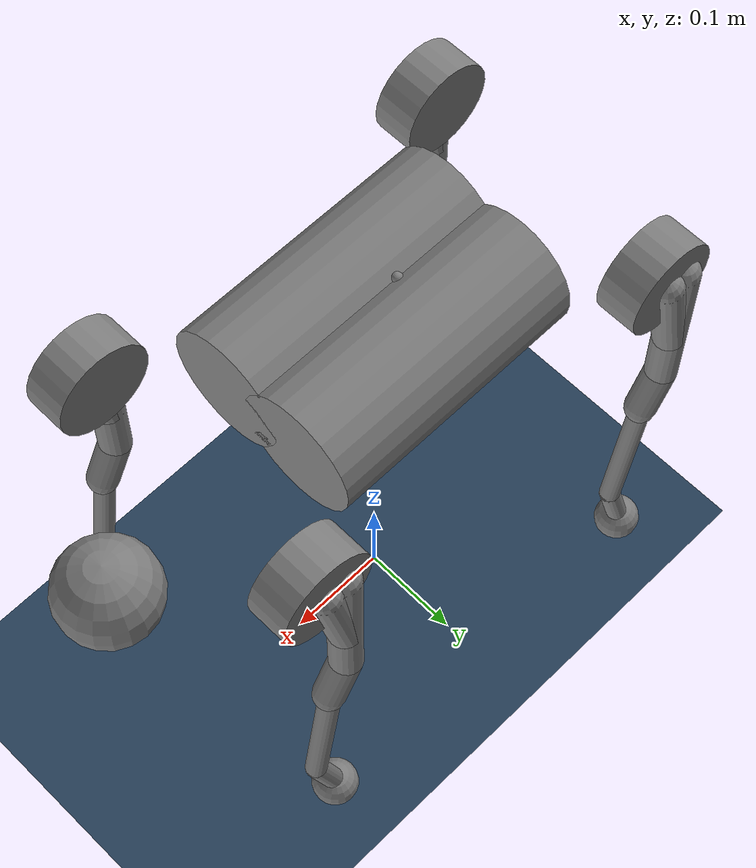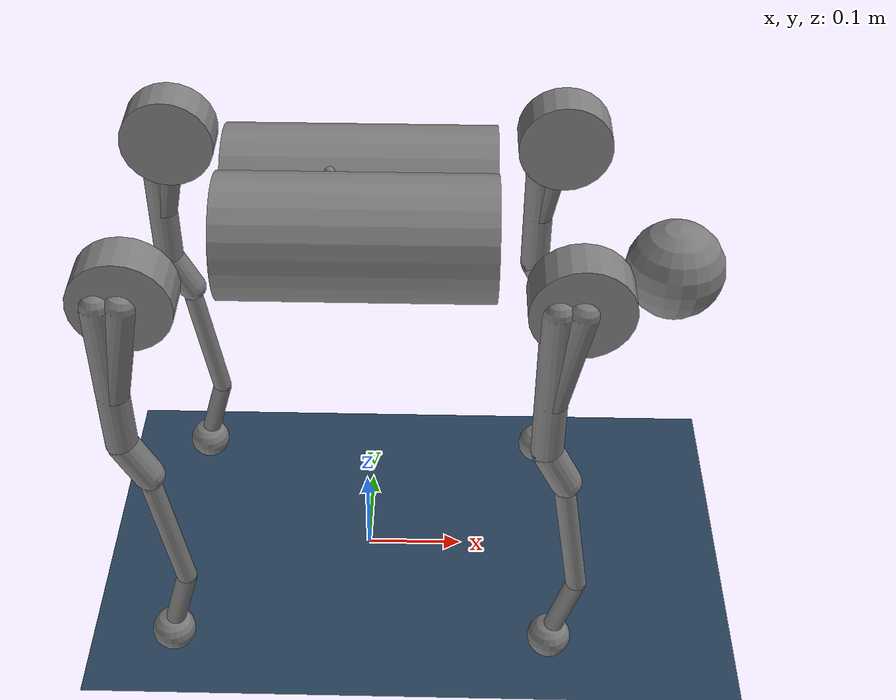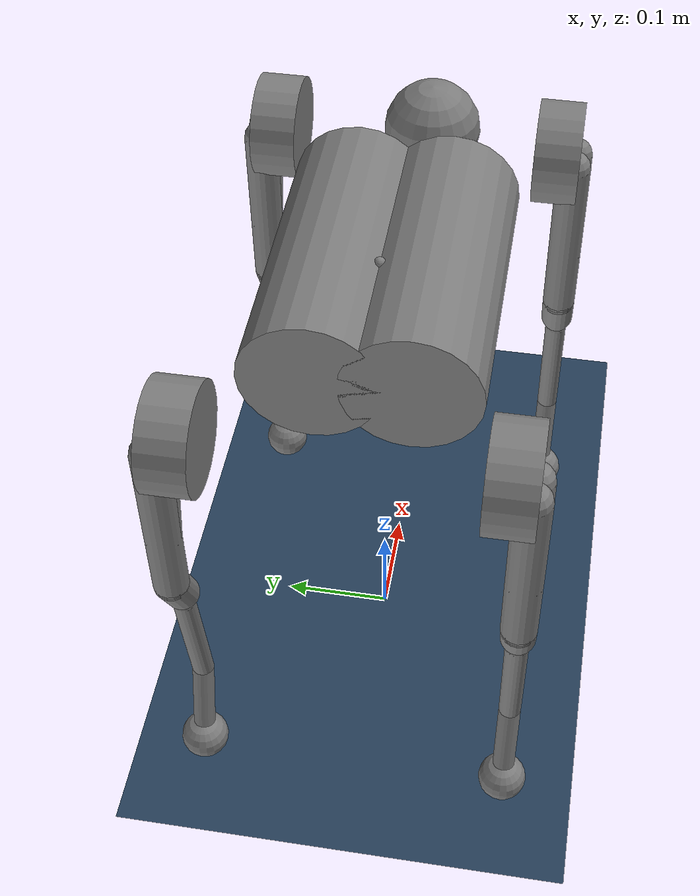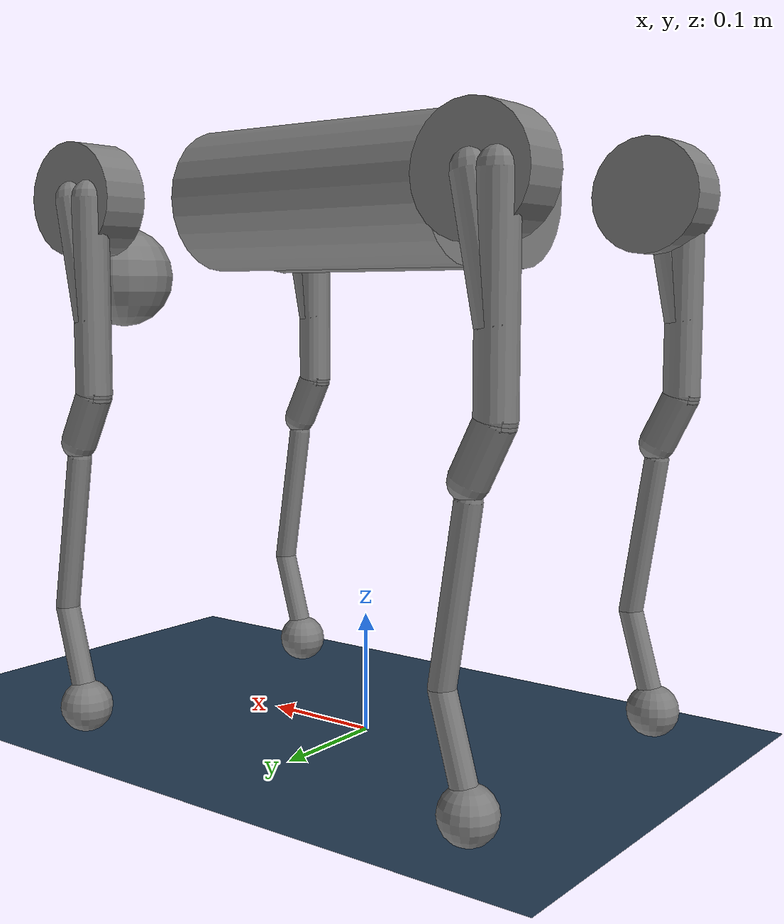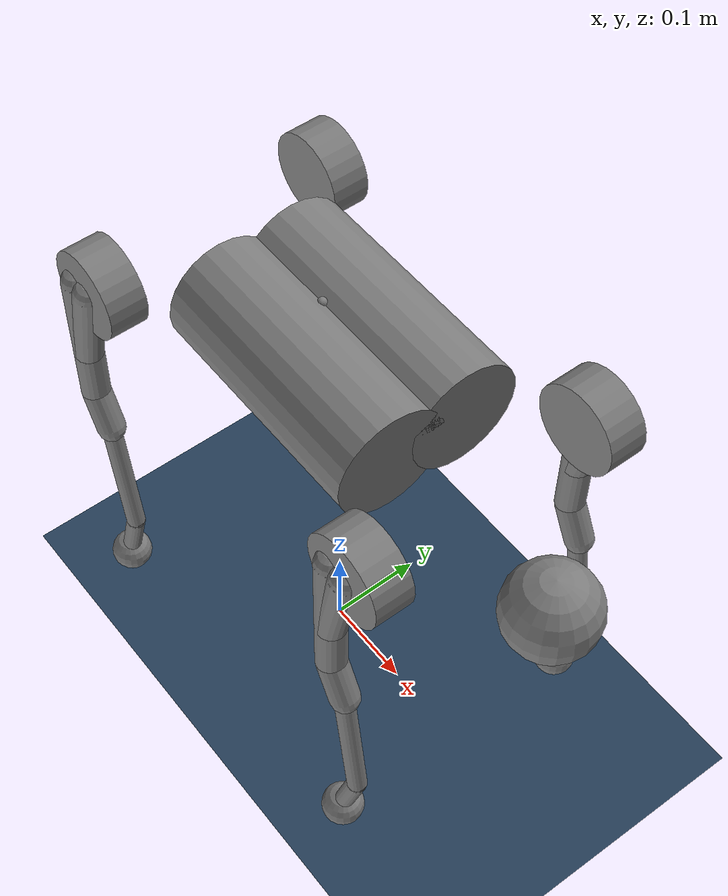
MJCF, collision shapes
<mujoco model="go2-mjx scene">
  <include file="go2_mjx_collision.xml"/>

  <statistic center="0 0 0.1" extent="0.8"/>

  <visual>
    <headlight diffuse="0.6 0.6 0.6" ambient="0.3 0.3 0.3" specular="0 0 0"/>
    <rgba haze="0.15 0.25 0.35 1"/>
    <global azimuth="120" elevation="-20"/>
  </visual>

  <asset>
    <texture type="skybox" builtin="gradient" rgb1="0.3 0.5 0.7" rgb2="0 0 0" width="512" height="3072"/>
    <texture type="2d" name="groundplane" builtin="checker" mark="edge" rgb1="0.2 0.3 0.4" rgb2="0.1 0.2 0.3"
      markrgb="0.8 0.8 0.8" width="300" height="300"/>
    <material name="groundplane" texture="groundplane" texuniform="true" texrepeat="5 5" reflectance="0.2"/>
  </asset>

  <worldbody>
    <light pos="0 0 1.5" dir="0 0 -1" directional="true"/>
    <camera name="default" pos="0.846 -1.465 0.916" xyaxes="0.866 0.500 0.000 -0.171 0.296 0.940"/>
    <geom name="floor" size="0 0 0.01" type="plane" material="groundplane" priority="1" friction="0.6" condim="3" contype="1" conaffinity="0"/>
  </worldbody>

  <keyframe>
    <key name="home" qpos="0 0 0.28 1 0 0 0 0.0 0.9 -1.8 0.0 0.9 -1.8 0.0 0.9 -1.8 0.0 0.9 -1.8"
      ctrl="0.0 0.9 -1.8 0.0 0.9 -1.8 0.0 0.9 -1.8 0.0 0.9 -1.8"/>
      <key name="crouch" qpos="-0.0384565 4.95902e-07 0.198396 0.998989 2.08821e-09 -0.0449472 -6.06184e-07 -0.0503107 0.956793 -2.15261 0.0503112 0.956793 -2.15261 -0.120289 0.915977 -2.27063 0.120289 0.915977 -2.27063"
      ctrl="-0.0503107 0.956793 -2.15261 0.0503112 0.956793 -2.15261 -0.120289 0.915977 -2.27063 0.120289 0.915977 -2.27063"/>
      <key name="prone_1" qpos="-0.0502458 3.66769e-06 0.0771103 0.998648 -1.29872e-06 -0.0519801 -1.94645e-05 -0.1339 1.22421 -2.7233 0.133924 1.22419 -2.72329 -0.481994 1.67458 -2.7239 0.48206 1.67406 -2.7239"
      ctrl="-0.13 1.2 -2.7 0.13 1.2 -2.7 -0.48 1.67 -2.7 0.48 1.67 -2.7"/>
      <key name="prone_2" qpos="-0.0369411 0.000157361 0.0765187 0.998689 -0.000882732 -0.0511797 0.000144047 -0.320642 1.17327 -2.61361 0.329096 1.1684 -2.61363 -0.483148 1.23678 -2.71366 0.493161 1.23329 -2.70996"
      ctrl="-0.352275 1.18554 -2.80738 0.360892 1.1806 -2.80281 -0.381197 1.16812 -2.79123 0.391054 1.1622 -2.78576"/>
  </keyframe>

</mujoco>

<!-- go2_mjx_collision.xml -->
<mujoco model="go2">
  <compiler angle="radian" meshdir="assets" autolimits="true"/>

  <option iterations="1" ls_iterations="5" timestep="0.004" integrator="Euler">
    <flag eulerdamp="disable"/>
  </option>

  <custom>
    <numeric data="30" name="max_contact_points"/>
    <numeric data="12" name="max_geom_pairs"/>
  </custom>

  <default>
    <default class="go2">
      <geom condim="1"/>
      <joint axis="0 1 0" damping="0.5" armature="0.01"/>
      <position forcerange="-23.7 23.7" inheritrange="1" kp="35.0"/>
      <default class="go2/abduction">
        <joint axis="1 0 0" range="-1.0472 1.0472" frictionloss="0.35"/>
      </default>
      <default class="go2/hip">
        <default class="go2/front_hip">
          <joint range="-1.5708 3.4907" frictionloss="0.35"/>
        </default>
        <default class="go2/back_hip">
          <joint range="-0.5236 4.5379" frictionloss="0.35"/>
        </default>
      </default>
      <default class="go2/knee">
        <joint range="-2.7227 -0.83776" frictionloss="1.35"/>
        <position forcerange="-45.43 45.43"/>
        <site pos="0 0 0"/>
      </default>
      <default class="go2/foot">
        <site pos="-0.002 0 -0.213"/>
      </default>
      <default class="go2/visual">
        <geom type="mesh" contype="0" conaffinity="0" group="2"/>
      </default>
      <default class="go2/collision">
        <geom group="3" type="capsule"/>
        <default class="hip_right">
          <geom size="0.046 0.02" pos="0 -0.08 0" quat="1 1 0 0" type="cylinder"/>
        </default>
        <default class="hip_left">
          <geom size="0.046 0.02" pos="0 0.08 0" quat="1 1 0 0" type="cylinder"/>
        </default>
        <default class="thigh1">
          <geom size="0.015" fromto="-0.02 0 0 -0.02 0 -0.16"/>
        </default>
        <default class="thigh2">
          <geom size="0.015" fromto="0 0 0 -0.02 0 -0.1"/>
        </default>
        <default class="thigh3">
          <geom size="0.015" fromto="-0.02 0 -0.16 0 0 -0.2"/>
        </default>
        <default class="calf1">
          <geom size="0.01" fromto="0 0 0 0.02 0 -0.13"/>
        </default>
        <default class="calf2">
          <geom size="0.01" fromto="0.02 0 -0.13 0 0 -0.2"/>
        </default>
        <default class="go2/collision/foot">
          <geom type="sphere" size="0.022" pos="-0.002 0 -0.213" solimp="0.9 .95 0.023" condim="3"/>
        </default>
      </default>
    </default>
  </default>

  <asset>
    <material name="metal" rgba=".9 .95 .95 1"/>
    <material name="black" rgba="0 0 0 1"/>
    <material name="white" rgba="1 1 1 1"/>
    <material name="gray" rgba="0.671705 0.692426 0.774270 1"/>
    <mesh file="base_0.obj"/>
    <mesh file="base_1.obj"/>
    <mesh file="base_2.obj"/>
    <mesh file="base_3.obj"/>
    <mesh file="base_4.obj"/>
    <mesh file="hip_0.obj"/>
    <mesh file="hip_1.obj"/>
    <mesh file="thigh_0.obj"/>
    <mesh file="thigh_1.obj"/>
    <mesh file="thigh_mirror_0.obj"/>
    <mesh file="thigh_mirror_1.obj"/>
    <mesh file="calf_0.obj"/>
    <mesh file="calf_1.obj"/>
    <mesh file="calf_mirror_0.obj"/>
    <mesh file="calf_mirror_1.obj"/>
    <mesh file="foot.obj"/>
  </asset>

   <worldbody>
        <body name="base_link" pos="0 0 0.445" childclass="go2">
            <inertial pos="0.021112 0 -0.005366" quat="-0.000543471 0.713435 -0.00173769 0.700719"
                mass="6.921"
                diaginertia="0.107027 0.0980771 0.0244531"/>
            <freejoint/>
            <geom mesh="base_0" material="black" class="go2/visual"/>
            <geom mesh="base_1" material="black" class="go2/visual"/>
            <geom mesh="base_2" material="black" class="go2/visual"/>
            <geom mesh="base_3" material="white" class="go2/visual"/>
            <geom mesh="base_4" material="gray" class="go2/visual"/>
            <!-- Collision: -->
            <geom size="0.047" pos="0.293 0 -0.06" type="sphere" class="go2/collision"/>
            <geom class="go2/collision" quat="1 0 1 0" pos="0 -0.04 0" size="0.058 0.125" type="cylinder"/>
            <geom class="go2/collision" quat="1 0 1 0" pos="0 0.04 0" size="0.058 0.125" type="cylinder"/>
            <site name="imu" pos="-0.02557 0 0.04232"/>
            <body name="front_right_hip" pos="0.1934 -0.0465 0">
                <inertial pos="-0.0054 -0.00194 -0.000105" quat="0.498237 0.505462 0.499245 0.497014"
                  mass="0.678"
                  diaginertia="0.00088403 0.000596003 0.000479967"/>
                <joint name="front_right_hip_joint" class="go2/abduction"/>
                <geom mesh="hip_0" material="metal" class="go2/visual" quat="4.63268e-05 1 0 0"/>
                <geom mesh="hip_1" material="gray" class="go2/visual" quat="4.63268e-05 1 0 0"/>
                <!-- Collision: -->
                <geom name="front_right_hip_collision" class="hip_right"/>
                <!-- Collision/ -->
                <body name="front_right_thigh" pos="0 -0.0955 0">
                    <inertial pos="-0.00374 0.0223 -0.0327" quat="0.551623 -0.0200632 0.0847635 0.829533"
                        mass="1.152"
                        diaginertia="0.00594973 0.00584149 0.000878787"/>
                    <joint name="front_right_thigh_joint" class="go2/front_hip"/>
                    <geom mesh="thigh_mirror_0" material="metal" class="go2/visual"/>
                    <geom mesh="thigh_mirror_1" material="gray" class="go2/visual"/>
                    <!-- Collision: -->
                    <geom name="front_right_thigh_collision1" class="thigh1"/>
                    <geom name="front_right_thigh_collision2" class="thigh2"/>
                    <geom name="front_right_thigh_collision3" class="thigh3"/>
                    <!-- Collision/ -->
                    <body name="front_right_calf" pos="0 0 -0.213">
                        <inertial pos="0.00629595 0.000622121 -0.141417"
                          quat="0.703508 -0.00450087 0.00154099 0.710672"
                          mass="0.241352" diaginertia="0.0014901 0.00146356 5.31397e-05"/>
                        <joint name="front_right_calf_joint" class="go2/knee"/>
                        <geom mesh="calf_mirror_0" material="gray" class="go2/visual"/>
                        <geom mesh="calf_mirror_1" material="black" class="go2/visual"/>
                        <!-- Collision -->
                        <geom name="front_right_calf_collision1" class="calf1"/>
                        <geom name="front_right_calf_collision2" class="calf2"/>
                        <!-- Collision/ -->
                        <site name="front_right_knee" class="go2/knee"/>
                        <geom pos="0 0 -0.213" mesh="foot" class="go2/visual" material="black"/>
                        <geom name="front_right" class="go2/collision/foot"/>
                        <site name="front_right_foot" class="go2/foot"/>
                    </body>
                </body>
            </body>
            <body name="front_left_hip" pos="0.1934 0.0465 0">
                <inertial pos="-0.0054 0.00194 -0.000105" quat="0.497014 0.499245 0.505462 0.498237"
                mass="0.678"
                diaginertia="0.00088403 0.000596003 0.000479967"/>
                <joint name="front_left_hip_joint" class="go2/abduction"/>
                <geom mesh="hip_0" material="metal" class="go2/visual"/>
                <geom mesh="hip_1" material="gray" class="go2/visual"/>
                <!-- Collision: -->
                <geom name="front_left_hip_collision" class="hip_left"/>
                <body name="front_left_thigh" pos="0 0.0955 0">
                    <inertial pos="-0.00374 -0.0223 -0.0327" quat="0.829533 0.0847635 -0.0200632 0.551623"
                        mass="1.152"
                        diaginertia="0.00594973 0.00584149 0.000878787"/>
                    <joint name="front_left_thigh_joint" class="go2/front_hip"/>
                    <geom mesh="thigh_0" material="metal" class="go2/visual"/>
                    <geom mesh="thigh_1" material="gray" class="go2/visual"/>
                    <!-- Collision: -->
                    <geom name="front_left_thigh_collision1" class="thigh1"/>
                    <geom name="front_left_thigh_collision2" class="thigh2"/>
                    <geom name="front_left_thigh_collision3" class="thigh3"/>
                    <!-- Collision/ -->
                    <body name="front_left_calf" pos="0 0 -0.213">
                        <inertial pos="0.00629595 -0.000622121 -0.141417"
                          quat="0.710672 0.00154099 -0.00450087 0.703508"
                          mass="0.241352" diaginertia="0.0014901 0.00146356 5.31397e-05"/>
                        <joint name="front_left_calf_joint" class="go2/knee"/>
                        <geom mesh="calf_0" material="gray" class="go2/visual"/>
                        <geom mesh="calf_1" material="black" class="go2/visual"/>
                        <!-- Collision: -->
                        <geom name="front_left_calf_collision1" class="calf1"/>
                        <geom name="front_left_calf_collision2" class="calf2"/>
                        <!-- Collision/ -->
                        <geom pos="0 0 -0.213" mesh="foot" class="go2/visual" material="black"/>
                        <geom name="front_left" class="go2/collision/foot"/>
                        <site name="front_left_foot" class="go2/foot"/>
                    </body>
                </body>
            </body>
            <body name="hind_right_hip" pos="-0.1934 -0.0465 0">
                <inertial pos="0.0054 -0.00194 -0.000105" quat="0.499245 0.497014 0.498237 0.505462"
                mass="0.678"
                diaginertia="0.00088403 0.000596003 0.000479967"/>
                <joint name="hind_right_hip_joint" class="go2/abduction"/>
                <geom mesh="hip_0" material="metal" class="go2/visual"
                quat="2.14617e-09 4.63268e-05 4.63268e-05 -1"/>
                <geom mesh="hip_1" material="gray" class="go2/visual"
                    quat="2.14617e-09 4.63268e-05 4.63268e-05 -1"/>
                <!-- Collision: -->
                <geom name="hind_right_hip_collision" class="hip_right"/>
                <!-- Collision/ -->
                <body name="hind_right_thigh" pos="0 -0.0955 0">
                  <inertial pos="-0.00374 0.0223 -0.0327" quat="0.551623 -0.0200632 0.0847635 0.829533"
                      mass="1.152"
                      diaginertia="0.00594973 0.00584149 0.000878787"/>
                  <joint name="hind_right_thigh_joint" class="go2/back_hip"/>
                  <geom mesh="thigh_mirror_0" material="metal" class="go2/visual"/>
                  <geom mesh="thigh_mirror_1" material="gray" class="go2/visual"/>
                  <!-- Collision: -->
                  <geom name="hind_right_thigh_collision1" class="thigh1"/>
                  <geom name="hind_right_thigh_collision2" class="thigh2"/>
                  <geom name="hind_right_thigh_collision3" class="thigh3"/>
                  <!-- Collision/ -->
                  <body name="hind_right_calf" pos="0 0 -0.213">
                      <inertial pos="0.00629595 0.000622121 -0.141417"
                      quat="0.703508 -0.00450087 0.00154099 0.710672"
                      mass="0.241352" diaginertia="0.0014901 0.00146356 5.31397e-05"/>
                      <joint name="hind_right_calf_joint" class="go2/knee"/>
                      <geom mesh="calf_mirror_0" material="gray" class="go2/visual"/>
                      <geom mesh="calf_mirror_1" material="black" class="go2/visual"/>
                      <!-- Collision: -->
                      <geom name="hind_right_calf_collision1" class="calf1"/>
                      <geom name="hind_right_calf_collision2" class="calf2"/>
                      <!-- Collision/ -->
                      <geom pos="0 0 -0.213" mesh="foot" class="go2/visual" material="black"/>
                      <geom name="hind_right" class="go2/collision/foot"/>
                      <site name="hind_right_foot" class="go2/foot"/>
                  </body>
                </body>
            </body>
            <body name="hind_left_hip" pos="-0.1934 0.0465 0">
                <inertial pos="0.0054 0.00194 -0.000105" quat="0.505462 0.498237 0.497014 0.499245"
                mass="0.678"
                diaginertia="0.00088403 0.000596003 0.000479967"/>
                <joint name="hind_left_hip_joint" class="go2/abduction"/>
                <geom mesh="hip_0" material="metal" class="go2/visual" quat="4.63268e-05 0 1 0"/>
                <geom mesh="hip_1" material="gray" class="go2/visual" quat="4.63268e-05 0 1 0"/>
                <!-- Collision -->
                <geom name="hind_left_hip_collision" class="hip_left"/>
                <!-- Collision/ -->
                <body name="hind_left_thigh" pos="0 0.0955 0">
                    <inertial pos="-0.00374 -0.0223 -0.0327" quat="0.829533 0.0847635 -0.0200632 0.551623"
                        mass="1.152"
                        diaginertia="0.00594973 0.00584149 0.000878787"/>
                    <joint name="hind_left_thigh_joint" class="go2/back_hip"/>
                    <geom mesh="thigh_0" material="metal" class="go2/visual"/>
                    <geom mesh="thigh_1" material="gray" class="go2/visual"/>
                    <!-- Collision: -->
                    <geom name="hind_left_thigh_collision1" class="thigh1"/>
                    <geom name="hind_left_thigh_collision2" class="thigh2"/>
                    <geom name="hind_left_thigh_collision3" class="thigh3"/>
                    <!-- Collision/ -->
                    <body name="hind_left_calf" pos="0 0 -0.213">
                        <inertial pos="0.00629595 -0.000622121 -0.141417"
                        quat="0.710672 0.00154099 -0.00450087 0.703508"
                        mass="0.241352" diaginertia="0.0014901 0.00146356 5.31397e-05"/>
                        <joint name="hind_left_calf_joint" class="go2/knee"/>
                        <geom mesh="calf_0" material="gray" class="go2/visual"/>
                        <geom mesh="calf_1" material="black" class="go2/visual"/>
                        <!-- Collision: -->
                        <geom name="hind_left_calf_collision1" class="calf1"/>
                        <geom name="hind_left_calf_collision2" class="calf2"/>
                        <!-- Collision/ -->
                        <geom pos="0 0 -0.213" mesh="foot" class="go2/visual" material="black"/>
                        <geom name="hind_left" class="go2/collision/foot"/>
                        <site name="hind_left_foot" class="go2/foot"/>
                    </body>
                </body>
            </body>
        </body>
    </worldbody>

  <actuator>
    <position class="go2/abduction" name="front_right_hip" joint="front_right_hip_joint"/>
    <position class="go2/hip" name="front_right_thigh" joint="front_right_thigh_joint"/>
    <position class="go2/knee" name="front_right_calf" joint="front_right_calf_joint"/>
    <position class="go2/abduction" name="front_left_hip" joint="front_left_hip_joint"/>
    <position class="go2/hip" name="front_left_thigh" joint="front_left_thigh_joint"/>
    <position class="go2/knee" name="front_left_calf" joint="front_left_calf_joint"/>
    <position class="go2/abduction" name="hind_right_hip" joint="hind_right_hip_joint"/>
    <position class="go2/hip" name="hind_right_thigh" joint="hind_right_thigh_joint"/>
    <position class="go2/knee" name="hind_right_calf" joint="hind_right_calf_joint"/>
    <position class="go2/abduction" name="hind_left_hip" joint="hind_left_hip_joint"/>
    <position class="go2/hip" name="hind_left_thigh" joint="hind_left_thigh_joint"/>
    <position class="go2/knee" name="hind_left_calf" joint="hind_left_calf_joint"/>
  </actuator>

  <sensor>
    <!-- IMU: -->
    <gyro name="imu_gyro" site="imu"/>
    <framequat name="imu_orientation" objtype="site" objname="imu"/>
    <accelerometer name="imu_acceleration" site="imu"/>

    <!-- State Estimator: -->
    <velocimeter name="local_linvel" site="imu"/>
    <framepos name="imu_position" objtype="site" objname="imu"/>
    <framelinvel name="fr_global_linvel" objtype="site" objname="front_right_foot"/>
    <framelinvel name="fl_global_linvel" objtype="site" objname="front_left_foot"/>
    <framelinvel name="hr_global_linvel" objtype="site" objname="hind_right_foot"/>
    <framelinvel name="hl_global_linvel" objtype="site" objname="hind_left_foot"/>
    <framepos name="fr_pos" objtype="site" objname="front_right_foot" reftype="site" refname="imu"/>
    <framepos name="fl_pos" objtype="site" objname="front_left_foot" reftype="site" refname="imu"/>
    <framepos name="hr_pos" objtype="site" objname="hind_right_foot" reftype="site" refname="imu"/>
    <framepos name="hl_pos" objtype="site" objname="hind_left_foot" reftype="site" refname="imu"/>

    <!-- Globals: -->
    <framezaxis name="upvector" objtype="site" objname="imu"/>
    <framexaxis name="forwardvector" objtype="site" objname="imu"/>
    <framelinvel name="global_linvel" objtype="site" objname="imu"/>
    <frameangvel name="global_angvel" objtype="site" objname="imu"/>
  </sensor>

</mujoco>
